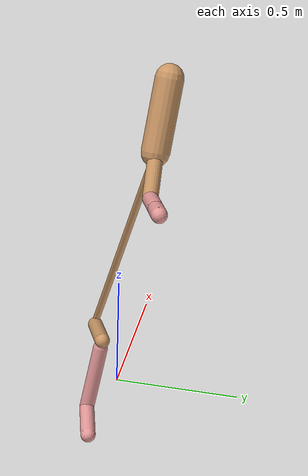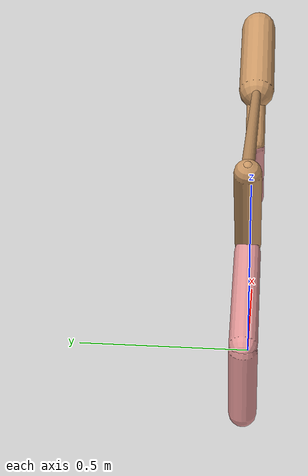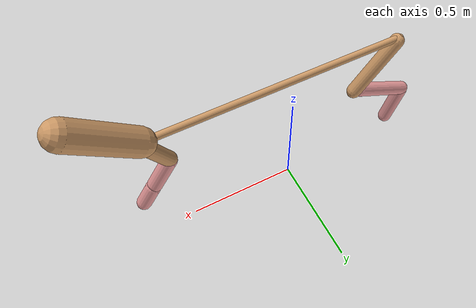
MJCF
<mujoco model="cheetah">
  <compiler angle="radian" coordinate="local" inertiafromgeom="true" settotalmass="14" />
  <default>
    <joint armature=".1" damping=".01" limited="true" solimplimit="0 .8 .03" solreflimit=".02 1" stiffness="8" />
    <geom conaffinity="0" condim="3" contype="1" friction="0.8 .1 .1" rgba="0.8 0.6 .4 1" solimp="0.0 0.8 0.01" solref="0.02 1" />
    <motor ctrllimited="true" ctrlrange="-1 1" />
  </default>
  <size nstack="300000" nuser_geom="1" />
  <option gravity="0 0 -9.81" timestep="0.01" />
  <worldbody>
    <body name="torso" pos="0.0 0.0 0.6676983573621147">
      <joint armature="0" axis="1 0 0" damping="0" limited="false" name="ignorex" pos="0 0 0" stiffness="0" type="slide" />
      <joint armature="0" axis="0 0 1" damping="0" limited="false" name="ignorez" pos="0 0 0" stiffness="0" type="slide" />
      <joint armature="0" axis="0 1 0" damping="0" limited="false" name="ignorey" pos="0 0 0" stiffness="0" type="hinge" />
      <geom fromto="-0.5 0.0 0.0 0.6478681202555675 0.0 0.0" name="torso" size="0.015256255602661676" type="capsule" />
      <geom axisangle="0 1 0 .87" name="head" pos="0.7478681202555676 0.0 0.1" size="0.05946269407935718 0.15" type="capsule" />

      <body name="bthigh" pos="-.5 0 0">
        <joint axis="0 1 0" damping="6" name="bthigh" pos="0 0 0" range="-.52 1.05" stiffness="240" type="hinge" />
        <geom axisangle="0 1 0 -3.8" name="bthigh" pos="0.09757989358400951 0.0 -0.12685386165921236" size="0.0322 0.14103073035381916" type="capsule" />
        <body name="bshin" pos="0.155159787168019 0.0 -0.24370772331842472">
          <joint axis="0 1 0" damping="4.5" name="bshin" pos="0 0 0" range="-.785 .785" stiffness="180" type="hinge" />
          <geom axisangle="0 1 0 -2.03" name="bshin" pos="-0.13632735582763303 0.0 -0.06816367791381651" rgba="0.9 0.6 0.6 1" size="0.0322 0.1458938589867095" type="capsule" />
          <body name="bfoot" pos="-0.27265471165526606 0.0 -0.13632735582763303">
            <joint axis="0 1 0" damping="3" name="bfoot" pos="0 0 0" range="-.4 .785" stiffness="120" type="hinge" />
            <geom axisangle="0 1 0 -.27" name="bfoot" pos="0.029239702715581777 0.0 -0.09454170544704776" rgba="0.9 0.6 0.6 1" size="0.0322 0.09142681829833796" type="capsule" />
            <inertial mass="10" />
          </body>
        </body>
      </body>
      <body name="fthigh" pos="0.6478681202555676 0.0 0.0">
        <joint axis="0 1 0" damping="4.5" name="fthigh" pos="0 0 0" range="-1.5 0.8" stiffness="180" type="hinge" />
        <geom axisangle="0 1 0 .52" name="fthigh" pos="-0.04989554608158897 0.0 -0.0855352218541525" size="0.0322 0.0931" type="capsule" />
        <body name="fshin" pos="-0.09979109216317794 0.0 -0.171070443708305">
          <joint axis="0 1 0" damping="3" name="fshin" pos="0 0 0" range="-1.2 1.1" stiffness="120" type="hinge" />
          <geom axisangle="0 1 0 -.6" name="fshin" pos="0.046381400387749405 0.0 -0.06422040053688378" rgba="0.9 0.6 0.6 1" size="0.0322 0.07419999999999999" type="capsule" />
          <body name="ffoot" pos="0.09276280077549881 0.0 -0.12844080107376757">
            <joint axis="0 1 0" damping="1.5" name="ffoot" pos="0 0 0" range="-3.1 -0.3" stiffness="60" type="hinge" />
            <geom axisangle="0 1 0 -.6" name="ffoot" pos="0.033644090582416526 0.0 -0.05233525201709238" rgba="0.9 0.6 0.6 1" size="0.0322 0.049" type="capsule" />
            <inertial mass="10" />
          </body>
        </body>
      </body>
    </body>
  </worldbody>
  <actuator>
    <motor gear="120" joint="bthigh" name="bthigh" />
    <motor gear="90" joint="bshin" name="bshin" />
    <motor gear="60" joint="bfoot" name="bfoot" />
    <motor gear="120" joint="fthigh" name="fthigh" />
    <motor gear="60" joint="fshin" name="fshin" />
    <motor gear="30" joint="ffoot" name="ffoot" />
  </actuator>
</mujoco>
